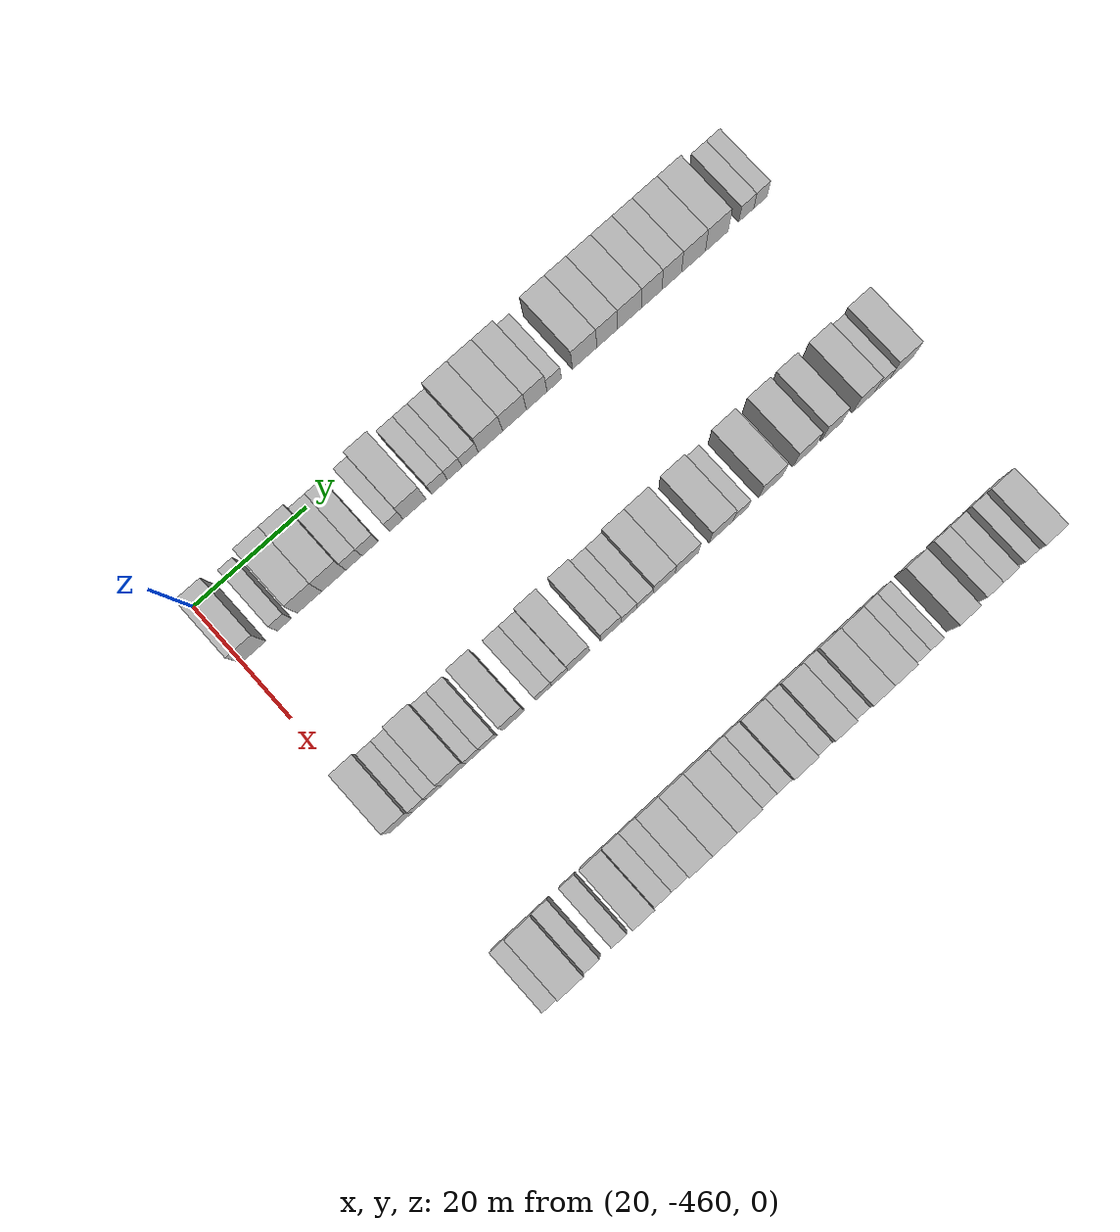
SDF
<sdf version="1.6">
 <world name="default">
  <model name="building_1">
   <static>1</static>
   <pose>25.0000 -457.8550 0 0.000000 0.000000 0.000000</pose>
   <link name="link">
    <pose>0 0 4.50 0 0 0</pose>
    <collision name="collision"><geometry><box><size>10.0000 4.2900 9.0000</size></box></geometry></collision>
    <visual name="visual">
     <cast_shadows>0</cast_shadows>
     <geometry><box><size>10.0000 4.2900 9.0000</size></box></geometry>
     <material>
      <script>
       <uri>model://HANNAS_wall/materials/scripts</uri>
       <uri>model://HANNAS_wall/materials/textures</uri>
       <name>vrc/HANNAS_wall</name>
      </script>
     </material>
    </visual>
   </link>
  </model>
  <model name="building_2">
   <static>1</static>
   <pose>25.0000 -452.4707 0 0.000000 0.000000 0.000000</pose>
   <link name="link">
    <pose>0 0 3.00 0 0 0</pose>
    <collision name="collision"><geometry><box><size>10.0000 2.4787 6.0000</size></box></geometry></collision>
    <visual name="visual">
     <cast_shadows>0</cast_shadows>
     <geometry><box><size>10.0000 2.4787 6.0000</size></box></geometry>
     <material>
      <script>
       <uri>model://HANNAS_wall/materials/scripts</uri>
       <uri>model://HANNAS_wall/materials/textures</uri>
       <name>vrc/HANNAS_wall</name>
      </script>
     </material>
    </visual>
   </link>
  </model>
  <model name="building_3">
   <static>1</static>
   <pose>25.0000 -448.0587 0 0.000000 0.000000 0.000000</pose>
   <link name="link">
    <pose>0 0 4.50 0 0 0</pose>
    <collision name="collision"><geometry><box><size>10.0000 4.3453 9.0000</size></box></geometry></collision>
    <visual name="visual">
     <cast_shadows>0</cast_shadows>
     <geometry><box><size>10.0000 4.3453 9.0000</size></box></geometry>
     <material>
      <script>
       <uri>model://HANNAS_wall/materials/scripts</uri>
       <uri>model://HANNAS_wall/materials/textures</uri>
       <name>vrc/HANNAS_wall</name>
      </script>
     </material>
    </visual>
   </link>
  </model>
  <model name="building_4">
   <static>1</static>
   <pose>25.0000 -443.7593 0 0.000000 0.000000 0.000000</pose>
   <link name="link">
    <pose>0 0 4.50 0 0 0</pose>
    <collision name="collision"><geometry><box><size>10.0000 4.2534 9.0000</size></box></geometry></collision>
    <visual name="visual">
     <cast_shadows>0</cast_shadows>
     <geometry><box><size>10.0000 4.2534 9.0000</size></box></geometry>
     <material>
      <script>
       <uri>model://HANNAS_wall/materials/scripts</uri>
       <uri>model://HANNAS_wall/materials/textures</uri>
       <name>vrc/HANNAS_wall</name>
      </script>
     </material>
    </visual>
   </link>
  </model>
  <model name="building_5">
   <static>1</static>
   <pose>25.0000 -440.2116 0 0.000000 0.000000 0.000000</pose>
   <link name="link">
    <pose>0 0 3.00 0 0 0</pose>
    <collision name="collision"><geometry><box><size>10.0000 2.8421 6.0000</size></box></geometry></collision>
    <visual name="visual">
     <cast_shadows>0</cast_shadows>
     <geometry><box><size>10.0000 2.8421 6.0000</size></box></geometry>
     <material>
      <script>
       <uri>model://HANNAS_wall/materials/scripts</uri>
       <uri>model://HANNAS_wall/materials/textures</uri>
       <name>vrc/HANNAS_wall</name>
      </script>
     </material>
    </visual>
   </link>
  </model>
  <model name="building_6">
   <static>1</static>
   <pose>25.0000 -437.3283 0 0.000000 0.000000 0.000000</pose>
   <link name="link">
    <pose>0 0 3.00 0 0 0</pose>
    <collision name="collision"><geometry><box><size>10.0000 2.9245 6.0000</size></box></geometry></collision>
    <visual name="visual">
     <cast_shadows>0</cast_shadows>
     <geometry><box><size>10.0000 2.9245 6.0000</size></box></geometry>
     <material>
      <script>
       <uri>model://HANNAS_wall/materials/scripts</uri>
       <uri>model://HANNAS_wall/materials/textures</uri>
       <name>vrc/HANNAS_wall</name>
      </script>
     </material>
    </visual>
   </link>
  </model>
  <model name="building_7">
   <static>1</static>
   <pose>25.0000 -432.6552 0 0.000000 0.000000 0.000000</pose>
   <link name="link">
    <pose>0 0 3.00 0 0 0</pose>
    <collision name="collision"><geometry><box><size>10.0000 2.4216 6.0000</size></box></geometry></collision>
    <visual name="visual">
     <cast_shadows>0</cast_shadows>
     <geometry><box><size>10.0000 2.4216 6.0000</size></box></geometry>
     <material>
      <script>
       <uri>model://HANNAS_wall/materials/scripts</uri>
       <uri>model://HANNAS_wall/materials/textures</uri>
       <name>vrc/HANNAS_wall</name>
      </script>
     </material>
    </visual>
   </link>
  </model>
  <model name="building_8">
   <static>1</static>
   <pose>25.0000 -429.4056 0 0.000000 0.000000 0.000000</pose>
   <link name="link">
    <pose>0 0 4.50 0 0 0</pose>
    <collision name="collision"><geometry><box><size>10.0000 4.0777 9.0000</size></box></geometry></collision>
    <visual name="visual">
     <cast_shadows>0</cast_shadows>
     <geometry><box><size>10.0000 4.0777 9.0000</size></box></geometry>
     <material>
      <script>
       <uri>model://HANNAS_wall/materials/scripts</uri>
       <uri>model://HANNAS_wall/materials/textures</uri>
       <name>vrc/HANNAS_wall</name>
      </script>
     </material>
    </visual>
   </link>
  </model>
  <model name="building_9">
   <static>1</static>
   <pose>25.0000 -424.9362 0 0.000000 0.000000 0.000000</pose>
   <link name="link">
    <pose>0 0 3.00 0 0 0</pose>
    <collision name="collision"><geometry><box><size>10.0000 2.8610 6.0000</size></box></geometry></collision>
    <visual name="visual">
     <cast_shadows>0</cast_shadows>
     <geometry><box><size>10.0000 2.8610 6.0000</size></box></geometry>
     <material>
      <script>
       <uri>model://HANNAS_wall/materials/scripts</uri>
       <uri>model://HANNAS_wall/materials/textures</uri>
       <name>vrc/HANNAS_wall</name>
      </script>
     </material>
    </visual>
   </link>
  </model>
  <model name="building_10">
   <static>1</static>
   <pose>25.0000 -422.1943 0 0.000000 0.000000 0.000000</pose>
   <link name="link">
    <pose>0 0 3.00 0 0 0</pose>
    <collision name="collision"><geometry><box><size>10.0000 2.6229 6.0000</size></box></geometry></collision>
    <visual name="visual">
     <cast_shadows>0</cast_shadows>
     <geometry><box><size>10.0000 2.6229 6.0000</size></box></geometry>
     <material>
      <script>
       <uri>model://HANNAS_wall/materials/scripts</uri>
       <uri>model://HANNAS_wall/materials/textures</uri>
       <name>vrc/HANNAS_wall</name>
      </script>
     </material>
    </visual>
   </link>
  </model>
  <model name="building_11">
   <static>1</static>
   <pose>25.0000 -419.4093 0 0.000000 0.000000 0.000000</pose>
   <link name="link">
    <pose>0 0 3.00 0 0 0</pose>
    <collision name="collision"><geometry><box><size>10.0000 2.9471 6.0000</size></box></geometry></collision>
    <visual name="visual">
     <cast_shadows>0</cast_shadows>
     <geometry><box><size>10.0000 2.9471 6.0000</size></box></geometry>
     <material>
      <script>
       <uri>model://HANNAS_wall/materials/scripts</uri>
       <uri>model://HANNAS_wall/materials/textures</uri>
       <name>vrc/HANNAS_wall</name>
      </script>
     </material>
    </visual>
   </link>
  </model>
  <model name="building_12">
   <static>1</static>
   <pose>25.0000 -415.7483 0 0.000000 0.000000 0.000000</pose>
   <link name="link">
    <pose>0 0 4.50 0 0 0</pose>
    <collision name="collision"><geometry><box><size>10.0000 4.3748 9.0000</size></box></geometry></collision>
    <visual name="visual">
     <cast_shadows>0</cast_shadows>
     <geometry><box><size>10.0000 4.3748 9.0000</size></box></geometry>
     <material>
      <script>
       <uri>model://HANNAS_wall/materials/scripts</uri>
       <uri>model://HANNAS_wall/materials/textures</uri>
       <name>vrc/HANNAS_wall</name>
      </script>
     </material>
    </visual>
   </link>
  </model>
  <model name="building_13">
   <static>1</static>
   <pose>25.0000 -411.3932 0 0.000000 0.000000 0.000000</pose>
   <link name="link">
    <pose>0 0 4.50 0 0 0</pose>
    <collision name="collision"><geometry><box><size>10.0000 4.3353 9.0000</size></box></geometry></collision>
    <visual name="visual">
     <cast_shadows>0</cast_shadows>
     <geometry><box><size>10.0000 4.3353 9.0000</size></box></geometry>
     <material>
      <script>
       <uri>model://HANNAS_wall/materials/scripts</uri>
       <uri>model://HANNAS_wall/materials/textures</uri>
       <name>vrc/HANNAS_wall</name>
      </script>
     </material>
    </visual>
   </link>
  </model>
  <model name="building_14">
   <static>1</static>
   <pose>25.0000 -407.3609 0 0.000000 0.000000 0.000000</pose>
   <link name="link">
    <pose>0 0 4.50 0 0 0</pose>
    <collision name="collision"><geometry><box><size>10.0000 3.7292 9.0000</size></box></geometry></collision>
    <visual name="visual">
     <cast_shadows>0</cast_shadows>
     <geometry><box><size>10.0000 3.7292 9.0000</size></box></geometry>
     <material>
      <script>
       <uri>model://HANNAS_wall/materials/scripts</uri>
       <uri>model://HANNAS_wall/materials/textures</uri>
       <name>vrc/HANNAS_wall</name>
      </script>
     </material>
    </visual>
   </link>
  </model>
  <model name="building_15">
   <static>1</static>
   <pose>25.0000 -404.1684 0 0.000000 0.000000 0.000000</pose>
   <link name="link">
    <pose>0 0 3.00 0 0 0</pose>
    <collision name="collision"><geometry><box><size>10.0000 2.6560 6.0000</size></box></geometry></collision>
    <visual name="visual">
     <cast_shadows>0</cast_shadows>
     <geometry><box><size>10.0000 2.6560 6.0000</size></box></geometry>
     <material>
      <script>
       <uri>model://HANNAS_wall/materials/scripts</uri>
       <uri>model://HANNAS_wall/materials/textures</uri>
       <name>vrc/HANNAS_wall</name>
      </script>
     </material>
    </visual>
   </link>
  </model>
  <model name="building_16">
   <static>1</static>
   <pose>25.0000 -398.6194 0 0.000000 0.000000 0.000000</pose>
   <link name="link">
    <pose>0 0 4.50 0 0 0</pose>
    <collision name="collision"><geometry><box><size>10.0000 4.4418 9.0000</size></box></geometry></collision>
    <visual name="visual">
     <cast_shadows>0</cast_shadows>
     <geometry><box><size>10.0000 4.4418 9.0000</size></box></geometry>
     <material>
      <script>
       <uri>model://HANNAS_wall/materials/scripts</uri>
       <uri>model://HANNAS_wall/materials/textures</uri>
       <name>vrc/HANNAS_wall</name>
      </script>
     </material>
    </visual>
   </link>
  </model>
  <model name="building_17">
   <static>1</static>
   <pose>25.0000 -394.4793 0 0.000000 0.000000 0.000000</pose>
   <link name="link">
    <pose>0 0 4.50 0 0 0</pose>
    <collision name="collision"><geometry><box><size>10.0000 3.8385 9.0000</size></box></geometry></collision>
    <visual name="visual">
     <cast_shadows>0</cast_shadows>
     <geometry><box><size>10.0000 3.8385 9.0000</size></box></geometry>
     <material>
      <script>
       <uri>model://HANNAS_wall/materials/scripts</uri>
       <uri>model://HANNAS_wall/materials/textures</uri>
       <name>vrc/HANNAS_wall</name>
      </script>
     </material>
    </visual>
   </link>
  </model>
  <model name="building_18">
   <static>1</static>
   <pose>25.0000 -390.3731 0 0.000000 0.000000 0.000000</pose>
   <link name="link">
    <pose>0 0 4.50 0 0 0</pose>
    <collision name="collision"><geometry><box><size>10.0000 4.3740 9.0000</size></box></geometry></collision>
    <visual name="visual">
     <cast_shadows>0</cast_shadows>
     <geometry><box><size>10.0000 4.3740 9.0000</size></box></geometry>
     <material>
      <script>
       <uri>model://HANNAS_wall/materials/scripts</uri>
       <uri>model://HANNAS_wall/materials/textures</uri>
       <name>vrc/HANNAS_wall</name>
      </script>
     </material>
    </visual>
   </link>
  </model>
  <model name="building_19">
   <static>1</static>
   <pose>25.0000 -386.2894 0 0.000000 0.000000 0.000000</pose>
   <link name="link">
    <pose>0 0 4.50 0 0 0</pose>
    <collision name="collision"><geometry><box><size>10.0000 3.7934 9.0000</size></box></geometry></collision>
    <visual name="visual">
     <cast_shadows>0</cast_shadows>
     <geometry><box><size>10.0000 3.7934 9.0000</size></box></geometry>
     <material>
      <script>
       <uri>model://HANNAS_wall/materials/scripts</uri>
       <uri>model://HANNAS_wall/materials/textures</uri>
       <name>vrc/HANNAS_wall</name>
      </script>
     </material>
    </visual>
   </link>
  </model>
  <model name="building_20">
   <static>1</static>
   <pose>25.0000 -382.5751 0 0.000000 0.000000 0.000000</pose>
   <link name="link">
    <pose>0 0 4.50 0 0 0</pose>
    <collision name="collision"><geometry><box><size>10.0000 3.6353 9.0000</size></box></geometry></collision>
    <visual name="visual">
     <cast_shadows>0</cast_shadows>
     <geometry><box><size>10.0000 3.6353 9.0000</size></box></geometry>
     <material>
      <script>
       <uri>model://HANNAS_wall/materials/scripts</uri>
       <uri>model://HANNAS_wall/materials/textures</uri>
       <name>vrc/HANNAS_wall</name>
      </script>
     </material>
    </visual>
   </link>
  </model>
  <model name="building_21">
   <static>1</static>
   <pose>25.0000 -378.5328 0 0.000000 0.000000 0.000000</pose>
   <link name="link">
    <pose>0 0 4.50 0 0 0</pose>
    <collision name="collision"><geometry><box><size>10.0000 4.4492 9.0000</size></box></geometry></collision>
    <visual name="visual">
     <cast_shadows>0</cast_shadows>
     <geometry><box><size>10.0000 4.4492 9.0000</size></box></geometry>
     <material>
      <script>
       <uri>model://HANNAS_wall/materials/scripts</uri>
       <uri>model://HANNAS_wall/materials/textures</uri>
       <name>vrc/HANNAS_wall</name>
      </script>
     </material>
    </visual>
   </link>
  </model>
  <model name="building_22">
   <static>1</static>
   <pose>25.0000 -374.1737 0 0.000000 0.000000 0.000000</pose>
   <link name="link">
    <pose>0 0 4.50 0 0 0</pose>
    <collision name="collision"><geometry><box><size>10.0000 4.2690 9.0000</size></box></geometry></collision>
    <visual name="visual">
     <cast_shadows>0</cast_shadows>
     <geometry><box><size>10.0000 4.2690 9.0000</size></box></geometry>
     <material>
      <script>
       <uri>model://HANNAS_wall/materials/scripts</uri>
       <uri>model://HANNAS_wall/materials/textures</uri>
       <name>vrc/HANNAS_wall</name>
      </script>
     </material>
    </visual>
   </link>
  </model>
  <model name="building_23">
   <static>1</static>
   <pose>25.0000 -368.6363 0 0.000000 0.000000 0.000000</pose>
   <link name="link">
    <pose>0 0 3.00 0 0 0</pose>
    <collision name="collision"><geometry><box><size>10.0000 2.8058 6.0000</size></box></geometry></collision>
    <visual name="visual">
     <cast_shadows>0</cast_shadows>
     <geometry><box><size>10.0000 2.8058 6.0000</size></box></geometry>
     <material>
      <script>
       <uri>model://HANNAS_wall/materials/scripts</uri>
       <uri>model://HANNAS_wall/materials/textures</uri>
       <name>vrc/HANNAS_wall</name>
      </script>
     </material>
    </visual>
   </link>
  </model>
  <model name="building_24">
   <static>1</static>
   <pose>25.0000 -365.9874 0 0.000000 0.000000 0.000000</pose>
   <link name="link">
    <pose>0 0 3.00 0 0 0</pose>
    <collision name="collision"><geometry><box><size>10.0000 2.4920 6.0000</size></box></geometry></collision>
    <visual name="visual">
     <cast_shadows>0</cast_shadows>
     <geometry><box><size>10.0000 2.4920 6.0000</size></box></geometry>
     <material>
      <script>
       <uri>model://HANNAS_wall/materials/scripts</uri>
       <uri>model://HANNAS_wall/materials/textures</uri>
       <name>vrc/HANNAS_wall</name>
      </script>
     </material>
    </visual>
   </link>
  </model>
  <model name="building_231">
   <static>1</static>
   <pose>55.0000 -458.0604 0 0.000000 0.000000 0.000000</pose>
   <link name="link">
    <pose>0 0 4.50 0 0 0</pose>
    <collision name="collision"><geometry><box><size>10.0000 3.8791 9.0000</size></box></geometry></collision>
    <visual name="visual">
     <cast_shadows>0</cast_shadows>
     <geometry><box><size>10.0000 3.8791 9.0000</size></box></geometry>
     <material>
      <script>
       <uri>model://HANNAS_wall/materials/scripts</uri>
       <uri>model://HANNAS_wall/materials/textures</uri>
       <name>vrc/HANNAS_wall</name>
      </script>
     </material>
    </visual>
   </link>
  </model>
  <model name="building_232">
   <static>1</static>
   <pose>55.0000 -454.8365 0 0.000000 0.000000 0.000000</pose>
   <link name="link">
    <pose>0 0 3.00 0 0 0</pose>
    <collision name="collision"><geometry><box><size>10.0000 2.5688 6.0000</size></box></geometry></collision>
    <visual name="visual">
     <cast_shadows>0</cast_shadows>
     <geometry><box><size>10.0000 2.5688 6.0000</size></box></geometry>
     <material>
      <script>
       <uri>model://HANNAS_wall/materials/scripts</uri>
       <uri>model://HANNAS_wall/materials/textures</uri>
       <name>vrc/HANNAS_wall</name>
      </script>
     </material>
    </visual>
   </link>
  </model>
  <model name="building_233">
   <static>1</static>
   <pose>55.0000 -452.2800 0 0.000000 0.000000 0.000000</pose>
   <link name="link">
    <pose>0 0 3.00 0 0 0</pose>
    <collision name="collision"><geometry><box><size>10.0000 2.5442 6.0000</size></box></geometry></collision>
    <visual name="visual">
     <cast_shadows>0</cast_shadows>
     <geometry><box><size>10.0000 2.5442 6.0000</size></box></geometry>
     <material>
      <script>
       <uri>model://HANNAS_wall/materials/scripts</uri>
       <uri>model://HANNAS_wall/materials/textures</uri>
       <name>vrc/HANNAS_wall</name>
      </script>
     </material>
    </visual>
   </link>
  </model>
  <model name="building_234">
   <static>1</static>
   <pose>55.0000 -448.8451 0 0.000000 0.000000 0.000000</pose>
   <link name="link">
    <pose>0 0 4.50 0 0 0</pose>
    <collision name="collision"><geometry><box><size>10.0000 4.3255 9.0000</size></box></geometry></collision>
    <visual name="visual">
     <cast_shadows>0</cast_shadows>
     <geometry><box><size>10.0000 4.3255 9.0000</size></box></geometry>
     <material>
      <script>
       <uri>model://HANNAS_wall/materials/scripts</uri>
       <uri>model://HANNAS_wall/materials/textures</uri>
       <name>vrc/HANNAS_wall</name>
      </script>
     </material>
    </visual>
   </link>
  </model>
  <model name="building_235">
   <static>1</static>
   <pose>55.0000 -445.4268 0 0.000000 0.000000 0.000000</pose>
   <link name="link">
    <pose>0 0 3.00 0 0 0</pose>
    <collision name="collision"><geometry><box><size>10.0000 2.5112 6.0000</size></box></geometry></collision>
    <visual name="visual">
     <cast_shadows>0</cast_shadows>
     <geometry><box><size>10.0000 2.5112 6.0000</size></box></geometry>
     <material>
      <script>
       <uri>model://HANNAS_wall/materials/scripts</uri>
       <uri>model://HANNAS_wall/materials/textures</uri>
       <name>vrc/HANNAS_wall</name>
      </script>
     </material>
    </visual>
   </link>
  </model>
  <model name="building_236">
   <static>1</static>
   <pose>55.0000 -442.7421 0 0.000000 0.000000 0.000000</pose>
   <link name="link">
    <pose>0 0 3.00 0 0 0</pose>
    <collision name="collision"><geometry><box><size>10.0000 2.8582 6.0000</size></box></geometry></collision>
    <visual name="visual">
     <cast_shadows>0</cast_shadows>
     <geometry><box><size>10.0000 2.8582 6.0000</size></box></geometry>
     <material>
      <script>
       <uri>model://HANNAS_wall/materials/scripts</uri>
       <uri>model://HANNAS_wall/materials/textures</uri>
       <name>vrc/HANNAS_wall</name>
      </script>
     </material>
    </visual>
   </link>
  </model>
  <model name="building_237">
   <static>1</static>
   <pose>55.0000 -438.3707 0 0.000000 0.000000 0.000000</pose>
   <link name="link">
    <pose>0 0 4.50 0 0 0</pose>
    <collision name="collision"><geometry><box><size>10.0000 3.8845 9.0000</size></box></geometry></collision>
    <visual name="visual">
     <cast_shadows>0</cast_shadows>
     <geometry><box><size>10.0000 3.8845 9.0000</size></box></geometry>
     <material>
      <script>
       <uri>model://HANNAS_wall/materials/scripts</uri>
       <uri>model://HANNAS_wall/materials/textures</uri>
       <name>vrc/HANNAS_wall</name>
      </script>
     </material>
    </visual>
   </link>
  </model>
  <model name="building_238">
   <static>1</static>
   <pose>55.0000 -433.0217 0 0.000000 0.000000 0.000000</pose>
   <link name="link">
    <pose>0 0 3.00 0 0 0</pose>
    <collision name="collision"><geometry><box><size>10.0000 2.8134 6.0000</size></box></geometry></collision>
    <visual name="visual">
     <cast_shadows>0</cast_shadows>
     <geometry><box><size>10.0000 2.8134 6.0000</size></box></geometry>
     <material>
      <script>
       <uri>model://HANNAS_wall/materials/scripts</uri>
       <uri>model://HANNAS_wall/materials/textures</uri>
       <name>vrc/HANNAS_wall</name>
      </script>
     </material>
    </visual>
   </link>
  </model>
  <model name="building_239">
   <static>1</static>
   <pose>55.0000 -430.1847 0 0.000000 0.000000 0.000000</pose>
   <link name="link">
    <pose>0 0 3.00 0 0 0</pose>
    <collision name="collision"><geometry><box><size>10.0000 2.8607 6.0000</size></box></geometry></collision>
    <visual name="visual">
     <cast_shadows>0</cast_shadows>
     <geometry><box><size>10.0000 2.8607 6.0000</size></box></geometry>
     <material>
      <script>
       <uri>model://HANNAS_wall/materials/scripts</uri>
       <uri>model://HANNAS_wall/materials/textures</uri>
       <name>vrc/HANNAS_wall</name>
      </script>
     </material>
    </visual>
   </link>
  </model>
  <model name="building_240">
   <static>1</static>
   <pose>55.0000 -426.8183 0 0.000000 0.000000 0.000000</pose>
   <link name="link">
    <pose>0 0 4.50 0 0 0</pose>
    <collision name="collision"><geometry><box><size>10.0000 3.8720 9.0000</size></box></geometry></collision>
    <visual name="visual">
     <cast_shadows>0</cast_shadows>
     <geometry><box><size>10.0000 3.8720 9.0000</size></box></geometry>
     <material>
      <script>
       <uri>model://HANNAS_wall/materials/scripts</uri>
       <uri>model://HANNAS_wall/materials/textures</uri>
       <name>vrc/HANNAS_wall</name>
      </script>
     </material>
    </visual>
   </link>
  </model>
  <model name="building_241">
   <static>1</static>
   <pose>55.0000 -421.0708 0 0.000000 0.000000 0.000000</pose>
   <link name="link">
    <pose>0 0 4.50 0 0 0</pose>
    <collision name="collision"><geometry><box><size>10.0000 3.6231 9.0000</size></box></geometry></collision>
    <visual name="visual">
     <cast_shadows>0</cast_shadows>
     <geometry><box><size>10.0000 3.6231 9.0000</size></box></geometry>
     <material>
      <script>
       <uri>model://HANNAS_wall/materials/scripts</uri>
       <uri>model://HANNAS_wall/materials/textures</uri>
       <name>vrc/HANNAS_wall</name>
      </script>
     </material>
    </visual>
   </link>
  </model>
  <model name="building_242">
   <static>1</static>
   <pose>55.0000 -417.8337 0 0.000000 0.000000 0.000000</pose>
   <link name="link">
    <pose>0 0 3.00 0 0 0</pose>
    <collision name="collision"><geometry><box><size>10.0000 2.8510 6.0000</size></box></geometry></collision>
    <visual name="visual">
     <cast_shadows>0</cast_shadows>
     <geometry><box><size>10.0000 2.8510 6.0000</size></box></geometry>
     <material>
      <script>
       <uri>model://HANNAS_wall/materials/scripts</uri>
       <uri>model://HANNAS_wall/materials/textures</uri>
       <name>vrc/HANNAS_wall</name>
      </script>
     </material>
    </visual>
   </link>
  </model>
  <model name="building_243">
   <static>1</static>
   <pose>55.0000 -414.9726 0 0.000000 0.000000 0.000000</pose>
   <link name="link">
    <pose>0 0 3.00 0 0 0</pose>
    <collision name="collision"><geometry><box><size>10.0000 2.8712 6.0000</size></box></geometry></collision>
    <visual name="visual">
     <cast_shadows>0</cast_shadows>
     <geometry><box><size>10.0000 2.8712 6.0000</size></box></geometry>
     <material>
      <script>
       <uri>model://HANNAS_wall/materials/scripts</uri>
       <uri>model://HANNAS_wall/materials/textures</uri>
       <name>vrc/HANNAS_wall</name>
      </script>
     </material>
    </visual>
   </link>
  </model>
  <model name="building_244">
   <static>1</static>
   <pose>55.0000 -411.5656 0 0.000000 0.000000 0.000000</pose>
   <link name="link">
    <pose>0 0 4.50 0 0 0</pose>
    <collision name="collision"><geometry><box><size>10.0000 3.9427 9.0000</size></box></geometry></collision>
    <visual name="visual">
     <cast_shadows>0</cast_shadows>
     <geometry><box><size>10.0000 3.9427 9.0000</size></box></geometry>
     <material>
      <script>
       <uri>model://HANNAS_wall/materials/scripts</uri>
       <uri>model://HANNAS_wall/materials/textures</uri>
       <name>vrc/HANNAS_wall</name>
      </script>
     </material>
    </visual>
   </link>
  </model>
  <model name="building_245">
   <static>1</static>
   <pose>55.0000 -407.4430 0 0.000000 0.000000 0.000000</pose>
   <link name="link">
    <pose>0 0 4.50 0 0 0</pose>
    <collision name="collision"><geometry><box><size>10.0000 4.3025 9.0000</size></box></geometry></collision>
    <visual name="visual">
     <cast_shadows>0</cast_shadows>
     <geometry><box><size>10.0000 4.3025 9.0000</size></box></geometry>
     <material>
      <script>
       <uri>model://HANNAS_wall/materials/scripts</uri>
       <uri>model://HANNAS_wall/materials/textures</uri>
       <name>vrc/HANNAS_wall</name>
      </script>
     </material>
    </visual>
   </link>
  </model>
  <model name="building_246">
   <static>1</static>
   <pose>55.0000 -401.1251 0 0.000000 0.000000 0.000000</pose>
   <link name="link">
    <pose>0 0 4.50 0 0 0</pose>
    <collision name="collision"><geometry><box><size>10.0000 4.3333 9.0000</size></box></geometry></collision>
    <visual name="visual">
     <cast_shadows>0</cast_shadows>
     <geometry><box><size>10.0000 4.3333 9.0000</size></box></geometry>
     <material>
      <script>
       <uri>model://HANNAS_wall/materials/scripts</uri>
       <uri>model://HANNAS_wall/materials/textures</uri>
       <name>vrc/HANNAS_wall</name>
      </script>
     </material>
    </visual>
   </link>
  </model>
  <model name="building_247">
   <static>1</static>
   <pose>55.0000 -397.6105 0 0.000000 0.000000 0.000000</pose>
   <link name="link">
    <pose>0 0 3.00 0 0 0</pose>
    <collision name="collision"><geometry><box><size>10.0000 2.6959 6.0000</size></box></geometry></collision>
    <visual name="visual">
     <cast_shadows>0</cast_shadows>
     <geometry><box><size>10.0000 2.6959 6.0000</size></box></geometry>
     <material>
      <script>
       <uri>model://HANNAS_wall/materials/scripts</uri>
       <uri>model://HANNAS_wall/materials/textures</uri>
       <name>vrc/HANNAS_wall</name>
      </script>
     </material>
    </visual>
   </link>
  </model>
  <model name="building_248">
   <static>1</static>
   <pose>55.0000 -392.1064 0 0.000000 0.000000 0.000000</pose>
   <link name="link">
    <pose>0 0 4.50 0 0 0</pose>
    <collision name="collision"><geometry><box><size>10.0000 4.3124 9.0000</size></box></geometry></collision>
    <visual name="visual">
     <cast_shadows>0</cast_shadows>
     <geometry><box><size>10.0000 4.3124 9.0000</size></box></geometry>
     <material>
      <script>
       <uri>model://HANNAS_wall/materials/scripts</uri>
       <uri>model://HANNAS_wall/materials/textures</uri>
       <name>vrc/HANNAS_wall</name>
      </script>
     </material>
    </visual>
   </link>
  </model>
  <model name="building_249">
   <static>1</static>
   <pose>55.0000 -385.8688 0 0.000000 0.000000 0.000000</pose>
   <link name="link">
    <pose>0 0 4.50 0 0 0</pose>
    <collision name="collision"><geometry><box><size>10.0000 4.1629 9.0000</size></box></geometry></collision>
    <visual name="visual">
     <cast_shadows>0</cast_shadows>
     <geometry><box><size>10.0000 4.1629 9.0000</size></box></geometry>
     <material>
      <script>
       <uri>model://HANNAS_wall/materials/scripts</uri>
       <uri>model://HANNAS_wall/materials/textures</uri>
       <name>vrc/HANNAS_wall</name>
      </script>
     </material>
    </visual>
   </link>
  </model>
  <model name="building_250">
   <static>1</static>
   <pose>55.0000 -380.8623 0 0.000000 0.000000 0.000000</pose>
   <link name="link">
    <pose>0 0 4.50 0 0 0</pose>
    <collision name="collision"><geometry><box><size>10.0000 3.8500 9.0000</size></box></geometry></collision>
    <visual name="visual">
     <cast_shadows>0</cast_shadows>
     <geometry><box><size>10.0000 3.8500 9.0000</size></box></geometry>
     <material>
      <script>
       <uri>model://HANNAS_wall/materials/scripts</uri>
       <uri>model://HANNAS_wall/materials/textures</uri>
       <name>vrc/HANNAS_wall</name>
      </script>
     </material>
    </visual>
   </link>
  </model>
  <model name="building_251">
   <static>1</static>
   <pose>55.0000 -374.9415 0 0.000000 0.000000 0.000000</pose>
   <link name="link">
    <pose>0 0 4.50 0 0 0</pose>
    <collision name="collision"><geometry><box><size>10.0000 3.9915 9.0000</size></box></geometry></collision>
    <visual name="visual">
     <cast_shadows>0</cast_shadows>
     <geometry><box><size>10.0000 3.9915 9.0000</size></box></geometry>
     <material>
      <script>
       <uri>model://HANNAS_wall/materials/scripts</uri>
       <uri>model://HANNAS_wall/materials/textures</uri>
       <name>vrc/HANNAS_wall</name>
      </script>
     </material>
    </visual>
   </link>
  </model>
  <model name="building_252">
   <static>1</static>
   <pose>55.0000 -371.4674 0 0.000000 0.000000 0.000000</pose>
   <link name="link">
    <pose>0 0 3.00 0 0 0</pose>
    <collision name="collision"><geometry><box><size>10.0000 2.9568 6.0000</size></box></geometry></collision>
    <visual name="visual">
     <cast_shadows>0</cast_shadows>
     <geometry><box><size>10.0000 2.9568 6.0000</size></box></geometry>
     <material>
      <script>
       <uri>model://HANNAS_wall/materials/scripts</uri>
       <uri>model://HANNAS_wall/materials/textures</uri>
       <name>vrc/HANNAS_wall</name>
      </script>
     </material>
    </visual>
   </link>
  </model>
  <model name="building_253">
   <static>1</static>
   <pose>55.0000 -367.9075 0 0.000000 0.000000 0.000000</pose>
   <link name="link">
    <pose>0 0 4.50 0 0 0</pose>
    <collision name="collision"><geometry><box><size>10.0000 4.1631 9.0000</size></box></geometry></collision>
    <visual name="visual">
     <cast_shadows>0</cast_shadows>
     <geometry><box><size>10.0000 4.1631 9.0000</size></box></geometry>
     <material>
      <script>
       <uri>model://HANNAS_wall/materials/scripts</uri>
       <uri>model://HANNAS_wall/materials/textures</uri>
       <name>vrc/HANNAS_wall</name>
      </script>
     </material>
    </visual>
   </link>
  </model>
  <model name="building_459">
   <static>1</static>
   <pose>85.0000 -458.6073 0 0.000000 0.000000 0.000000</pose>
   <link name="link">
    <pose>0 0 3.00 0 0 0</pose>
    <collision name="collision"><geometry><box><size>10.0000 2.7855 6.0000</size></box></geometry></collision>
    <visual name="visual">
     <cast_shadows>0</cast_shadows>
     <geometry><box><size>10.0000 2.7855 6.0000</size></box></geometry>
     <material>
      <script>
       <uri>model://HANNAS_wall/materials/scripts</uri>
       <uri>model://HANNAS_wall/materials/textures</uri>
       <name>vrc/HANNAS_wall</name>
      </script>
     </material>
    </visual>
   </link>
  </model>
  <model name="building_460">
   <static>1</static>
   <pose>85.0000 -455.0472 0 0.000000 0.000000 0.000000</pose>
   <link name="link">
    <pose>0 0 4.50 0 0 0</pose>
    <collision name="collision"><geometry><box><size>10.0000 4.3346 9.0000</size></box></geometry></collision>
    <visual name="visual">
     <cast_shadows>0</cast_shadows>
     <geometry><box><size>10.0000 4.3346 9.0000</size></box></geometry>
     <material>
      <script>
       <uri>model://HANNAS_wall/materials/scripts</uri>
       <uri>model://HANNAS_wall/materials/textures</uri>
       <name>vrc/HANNAS_wall</name>
      </script>
     </material>
    </visual>
   </link>
  </model>
  <model name="building_461">
   <static>1</static>
   <pose>85.0000 -451.5503 0 0.000000 0.000000 0.000000</pose>
   <link name="link">
    <pose>0 0 3.00 0 0 0</pose>
    <collision name="collision"><geometry><box><size>10.0000 2.6591 6.0000</size></box></geometry></collision>
    <visual name="visual">
     <cast_shadows>0</cast_shadows>
     <geometry><box><size>10.0000 2.6591 6.0000</size></box></geometry>
     <material>
      <script>
       <uri>model://HANNAS_wall/materials/scripts</uri>
       <uri>model://HANNAS_wall/materials/textures</uri>
       <name>vrc/HANNAS_wall</name>
      </script>
     </material>
    </visual>
   </link>
  </model>
  <model name="building_462">
   <static>1</static>
   <pose>85.0000 -446.9168 0 0.000000 0.000000 0.000000</pose>
   <link name="link">
    <pose>0 0 3.00 0 0 0</pose>
    <collision name="collision"><geometry><box><size>10.0000 2.6078 6.0000</size></box></geometry></collision>
    <visual name="visual">
     <cast_shadows>0</cast_shadows>
     <geometry><box><size>10.0000 2.6078 6.0000</size></box></geometry>
     <material>
      <script>
       <uri>model://HANNAS_wall/materials/scripts</uri>
       <uri>model://HANNAS_wall/materials/textures</uri>
       <name>vrc/HANNAS_wall</name>
      </script>
     </material>
    </visual>
   </link>
  </model>
  <model name="building_463">
   <static>1</static>
   <pose>85.0000 -442.7381 0 0.000000 0.000000 0.000000</pose>
   <link name="link">
    <pose>0 0 4.50 0 0 0</pose>
    <collision name="collision"><geometry><box><size>10.0000 3.7496 9.0000</size></box></geometry></collision>
    <visual name="visual">
     <cast_shadows>0</cast_shadows>
     <geometry><box><size>10.0000 3.7496 9.0000</size></box></geometry>
     <material>
      <script>
       <uri>model://HANNAS_wall/materials/scripts</uri>
       <uri>model://HANNAS_wall/materials/textures</uri>
       <name>vrc/HANNAS_wall</name>
      </script>
     </material>
    </visual>
   </link>
  </model>
  <model name="building_464">
   <static>1</static>
   <pose>85.0000 -439.3864 0 0.000000 0.000000 0.000000</pose>
   <link name="link">
    <pose>0 0 3.00 0 0 0</pose>
    <collision name="collision"><geometry><box><size>10.0000 2.9539 6.0000</size></box></geometry></collision>
    <visual name="visual">
     <cast_shadows>0</cast_shadows>
     <geometry><box><size>10.0000 2.9539 6.0000</size></box></geometry>
     <material>
      <script>
       <uri>model://HANNAS_wall/materials/scripts</uri>
       <uri>model://HANNAS_wall/materials/textures</uri>
       <name>vrc/HANNAS_wall</name>
      </script>
     </material>
    </visual>
   </link>
  </model>
  <model name="building_465">
   <static>1</static>
   <pose>85.0000 -436.4530 0 0.000000 0.000000 0.000000</pose>
   <link name="link">
    <pose>0 0 3.00 0 0 0</pose>
    <collision name="collision"><geometry><box><size>10.0000 2.9129 6.0000</size></box></geometry></collision>
    <visual name="visual">
     <cast_shadows>0</cast_shadows>
     <geometry><box><size>10.0000 2.9129 6.0000</size></box></geometry>
     <material>
      <script>
       <uri>model://HANNAS_wall/materials/scripts</uri>
       <uri>model://HANNAS_wall/materials/textures</uri>
       <name>vrc/HANNAS_wall</name>
      </script>
     </material>
    </visual>
   </link>
  </model>
  <model name="building_466">
   <static>1</static>
   <pose>85.0000 -433.0310 0 0.000000 0.000000 0.000000</pose>
   <link name="link">
    <pose>0 0 4.50 0 0 0</pose>
    <collision name="collision"><geometry><box><size>10.0000 3.9311 9.0000</size></box></geometry></collision>
    <visual name="visual">
     <cast_shadows>0</cast_shadows>
     <geometry><box><size>10.0000 3.9311 9.0000</size></box></geometry>
     <material>
      <script>
       <uri>model://HANNAS_wall/materials/scripts</uri>
       <uri>model://HANNAS_wall/materials/textures</uri>
       <name>vrc/HANNAS_wall</name>
      </script>
     </material>
    </visual>
   </link>
  </model>
  <model name="building_467">
   <static>1</static>
   <pose>85.0000 -428.9389 0 0.000000 0.000000 0.000000</pose>
   <link name="link">
    <pose>0 0 4.50 0 0 0</pose>
    <collision name="collision"><geometry><box><size>10.0000 4.2531 9.0000</size></box></geometry></collision>
    <visual name="visual">
     <cast_shadows>0</cast_shadows>
     <geometry><box><size>10.0000 4.2531 9.0000</size></box></geometry>
     <material>
      <script>
       <uri>model://HANNAS_wall/materials/scripts</uri>
       <uri>model://HANNAS_wall/materials/textures</uri>
       <name>vrc/HANNAS_wall</name>
      </script>
     </material>
    </visual>
   </link>
  </model>
  <model name="building_468">
   <static>1</static>
   <pose>85.0000 -424.6208 0 0.000000 0.000000 0.000000</pose>
   <link name="link">
    <pose>0 0 4.50 0 0 0</pose>
    <collision name="collision"><geometry><box><size>10.0000 4.3831 9.0000</size></box></geometry></collision>
    <visual name="visual">
     <cast_shadows>0</cast_shadows>
     <geometry><box><size>10.0000 4.3831 9.0000</size></box></geometry>
     <material>
      <script>
       <uri>model://HANNAS_wall/materials/scripts</uri>
       <uri>model://HANNAS_wall/materials/textures</uri>
       <name>vrc/HANNAS_wall</name>
      </script>
     </material>
    </visual>
   </link>
  </model>
  <model name="building_469">
   <static>1</static>
   <pose>85.0000 -421.0207 0 0.000000 0.000000 0.000000</pose>
   <link name="link">
    <pose>0 0 3.00 0 0 0</pose>
    <collision name="collision"><geometry><box><size>10.0000 2.8172 6.0000</size></box></geometry></collision>
    <visual name="visual">
     <cast_shadows>0</cast_shadows>
     <geometry><box><size>10.0000 2.8172 6.0000</size></box></geometry>
     <material>
      <script>
       <uri>model://HANNAS_wall/materials/scripts</uri>
       <uri>model://HANNAS_wall/materials/textures</uri>
       <name>vrc/HANNAS_wall</name>
      </script>
     </material>
    </visual>
   </link>
  </model>
  <model name="building_470">
   <static>1</static>
   <pose>85.0000 -418.2880 0 0.000000 0.000000 0.000000</pose>
   <link name="link">
    <pose>0 0 3.00 0 0 0</pose>
    <collision name="collision"><geometry><box><size>10.0000 2.6481 6.0000</size></box></geometry></collision>
    <visual name="visual">
     <cast_shadows>0</cast_shadows>
     <geometry><box><size>10.0000 2.6481 6.0000</size></box></geometry>
     <material>
      <script>
       <uri>model://HANNAS_wall/materials/scripts</uri>
       <uri>model://HANNAS_wall/materials/textures</uri>
       <name>vrc/HANNAS_wall</name>
      </script>
     </material>
    </visual>
   </link>
  </model>
  <model name="building_471">
   <static>1</static>
   <pose>85.0000 -414.8472 0 0.000000 0.000000 0.000000</pose>
   <link name="link">
    <pose>0 0 4.50 0 0 0</pose>
    <collision name="collision"><geometry><box><size>10.0000 4.2335 9.0000</size></box></geometry></collision>
    <visual name="visual">
     <cast_shadows>0</cast_shadows>
     <geometry><box><size>10.0000 4.2335 9.0000</size></box></geometry>
     <material>
      <script>
       <uri>model://HANNAS_wall/materials/scripts</uri>
       <uri>model://HANNAS_wall/materials/textures</uri>
       <name>vrc/HANNAS_wall</name>
      </script>
     </material>
    </visual>
   </link>
  </model>
  <model name="building_472">
   <static>1</static>
   <pose>85.0000 -411.3108 0 0.000000 0.000000 0.000000</pose>
   <link name="link">
    <pose>0 0 3.00 0 0 0</pose>
    <collision name="collision"><geometry><box><size>10.0000 2.8394 6.0000</size></box></geometry></collision>
    <visual name="visual">
     <cast_shadows>0</cast_shadows>
     <geometry><box><size>10.0000 2.8394 6.0000</size></box></geometry>
     <material>
      <script>
       <uri>model://HANNAS_wall/materials/scripts</uri>
       <uri>model://HANNAS_wall/materials/textures</uri>
       <name>vrc/HANNAS_wall</name>
      </script>
     </material>
    </visual>
   </link>
  </model>
  <model name="building_473">
   <static>1</static>
   <pose>85.0000 -407.9599 0 0.000000 0.000000 0.000000</pose>
   <link name="link">
    <pose>0 0 4.50 0 0 0</pose>
    <collision name="collision"><geometry><box><size>10.0000 3.8624 9.0000</size></box></geometry></collision>
    <visual name="visual">
     <cast_shadows>0</cast_shadows>
     <geometry><box><size>10.0000 3.8624 9.0000</size></box></geometry>
     <material>
      <script>
       <uri>model://HANNAS_wall/materials/scripts</uri>
       <uri>model://HANNAS_wall/materials/textures</uri>
       <name>vrc/HANNAS_wall</name>
      </script>
     </material>
    </visual>
   </link>
  </model>
  <model name="building_474">
   <static>1</static>
   <pose>85.0000 -404.6528 0 0.000000 0.000000 0.000000</pose>
   <link name="link">
    <pose>0 0 3.00 0 0 0</pose>
    <collision name="collision"><geometry><box><size>10.0000 2.7517 6.0000</size></box></geometry></collision>
    <visual name="visual">
     <cast_shadows>0</cast_shadows>
     <geometry><box><size>10.0000 2.7517 6.0000</size></box></geometry>
     <material>
      <script>
       <uri>model://HANNAS_wall/materials/scripts</uri>
       <uri>model://HANNAS_wall/materials/textures</uri>
       <name>vrc/HANNAS_wall</name>
      </script>
     </material>
    </visual>
   </link>
  </model>
  <model name="building_475">
   <static>1</static>
   <pose>85.0000 -401.3786 0 0.000000 0.000000 0.000000</pose>
   <link name="link">
    <pose>0 0 4.50 0 0 0</pose>
    <collision name="collision"><geometry><box><size>10.0000 3.7968 9.0000</size></box></geometry></collision>
    <visual name="visual">
     <cast_shadows>0</cast_shadows>
     <geometry><box><size>10.0000 3.7968 9.0000</size></box></geometry>
     <material>
      <script>
       <uri>model://HANNAS_wall/materials/scripts</uri>
       <uri>model://HANNAS_wall/materials/textures</uri>
       <name>vrc/HANNAS_wall</name>
      </script>
     </material>
    </visual>
   </link>
  </model>
  <model name="building_476">
   <static>1</static>
   <pose>85.0000 -397.4445 0 0.000000 0.000000 0.000000</pose>
   <link name="link">
    <pose>0 0 4.50 0 0 0</pose>
    <collision name="collision"><geometry><box><size>10.0000 4.0714 9.0000</size></box></geometry></collision>
    <visual name="visual">
     <cast_shadows>0</cast_shadows>
     <geometry><box><size>10.0000 4.0714 9.0000</size></box></geometry>
     <material>
      <script>
       <uri>model://HANNAS_wall/materials/scripts</uri>
       <uri>model://HANNAS_wall/materials/textures</uri>
       <name>vrc/HANNAS_wall</name>
      </script>
     </material>
    </visual>
   </link>
  </model>
  <model name="building_477">
   <static>1</static>
   <pose>85.0000 -393.9337 0 0.000000 0.000000 0.000000</pose>
   <link name="link">
    <pose>0 0 3.00 0 0 0</pose>
    <collision name="collision"><geometry><box><size>10.0000 2.9502 6.0000</size></box></geometry></collision>
    <visual name="visual">
     <cast_shadows>0</cast_shadows>
     <geometry><box><size>10.0000 2.9502 6.0000</size></box></geometry>
     <material>
      <script>
       <uri>model://HANNAS_wall/materials/scripts</uri>
       <uri>model://HANNAS_wall/materials/textures</uri>
       <name>vrc/HANNAS_wall</name>
      </script>
     </material>
    </visual>
   </link>
  </model>
  <model name="building_478">
   <static>1</static>
   <pose>85.0000 -391.2570 0 0.000000 0.000000 0.000000</pose>
   <link name="link">
    <pose>0 0 3.00 0 0 0</pose>
    <collision name="collision"><geometry><box><size>10.0000 2.4032 6.0000</size></box></geometry></collision>
    <visual name="visual">
     <cast_shadows>0</cast_shadows>
     <geometry><box><size>10.0000 2.4032 6.0000</size></box></geometry>
     <material>
      <script>
       <uri>model://HANNAS_wall/materials/scripts</uri>
       <uri>model://HANNAS_wall/materials/textures</uri>
       <name>vrc/HANNAS_wall</name>
      </script>
     </material>
    </visual>
   </link>
  </model>
  <model name="building_479">
   <static>1</static>
   <pose>85.0000 -386.1539 0 0.000000 0.000000 0.000000</pose>
   <link name="link">
    <pose>0 0 4.50 0 0 0</pose>
    <collision name="collision"><geometry><box><size>10.0000 3.8029 9.0000</size></box></geometry></collision>
    <visual name="visual">
     <cast_shadows>0</cast_shadows>
     <geometry><box><size>10.0000 3.8029 9.0000</size></box></geometry>
     <material>
      <script>
       <uri>model://HANNAS_wall/materials/scripts</uri>
       <uri>model://HANNAS_wall/materials/textures</uri>
       <name>vrc/HANNAS_wall</name>
      </script>
     </material>
    </visual>
   </link>
  </model>
  <model name="building_480">
   <static>1</static>
   <pose>85.0000 -380.7872 0 0.000000 0.000000 0.000000</pose>
   <link name="link">
    <pose>0 0 3.00 0 0 0</pose>
    <collision name="collision"><geometry><box><size>10.0000 2.9307 6.0000</size></box></geometry></collision>
    <visual name="visual">
     <cast_shadows>0</cast_shadows>
     <geometry><box><size>10.0000 2.9307 6.0000</size></box></geometry>
     <material>
      <script>
       <uri>model://HANNAS_wall/materials/scripts</uri>
       <uri>model://HANNAS_wall/materials/textures</uri>
       <name>vrc/HANNAS_wall</name>
      </script>
     </material>
    </visual>
   </link>
  </model>
  <model name="building_481">
   <static>1</static>
   <pose>85.0000 -377.8772 0 0.000000 0.000000 0.000000</pose>
   <link name="link">
    <pose>0 0 3.00 0 0 0</pose>
    <collision name="collision"><geometry><box><size>10.0000 2.8893 6.0000</size></box></geometry></collision>
    <visual name="visual">
     <cast_shadows>0</cast_shadows>
     <geometry><box><size>10.0000 2.8893 6.0000</size></box></geometry>
     <material>
      <script>
       <uri>model://HANNAS_wall/materials/scripts</uri>
       <uri>model://HANNAS_wall/materials/textures</uri>
       <name>vrc/HANNAS_wall</name>
      </script>
     </material>
    </visual>
   </link>
  </model>
  <model name="building_482">
   <static>1</static>
   <pose>85.0000 -374.1323 0 0.000000 0.000000 0.000000</pose>
   <link name="link">
    <pose>0 0 3.00 0 0 0</pose>
    <collision name="collision"><geometry><box><size>10.0000 2.6004 6.0000</size></box></geometry></collision>
    <visual name="visual">
     <cast_shadows>0</cast_shadows>
     <geometry><box><size>10.0000 2.6004 6.0000</size></box></geometry>
     <material>
      <script>
       <uri>model://HANNAS_wall/materials/scripts</uri>
       <uri>model://HANNAS_wall/materials/textures</uri>
       <name>vrc/HANNAS_wall</name>
      </script>
     </material>
    </visual>
   </link>
  </model>
  <model name="building_483">
   <static>1</static>
   <pose>85.0000 -370.7579 0 0.000000 0.000000 0.000000</pose>
   <link name="link">
    <pose>0 0 4.50 0 0 0</pose>
    <collision name="collision"><geometry><box><size>10.0000 4.1485 9.0000</size></box></geometry></collision>
    <visual name="visual">
     <cast_shadows>0</cast_shadows>
     <geometry><box><size>10.0000 4.1485 9.0000</size></box></geometry>
     <material>
      <script>
       <uri>model://HANNAS_wall/materials/scripts</uri>
       <uri>model://HANNAS_wall/materials/textures</uri>
       <name>vrc/HANNAS_wall</name>
      </script>
     </material>
    </visual>
   </link>
  </model>
 </world>
</sdf>
